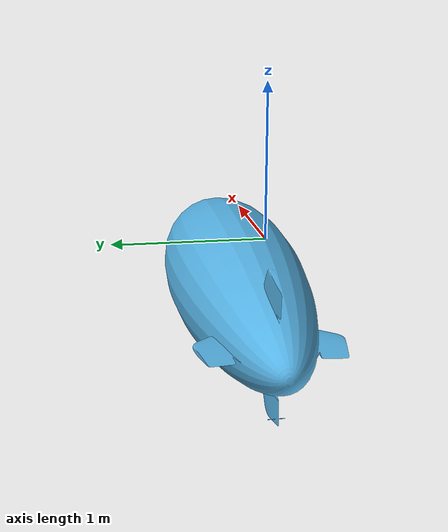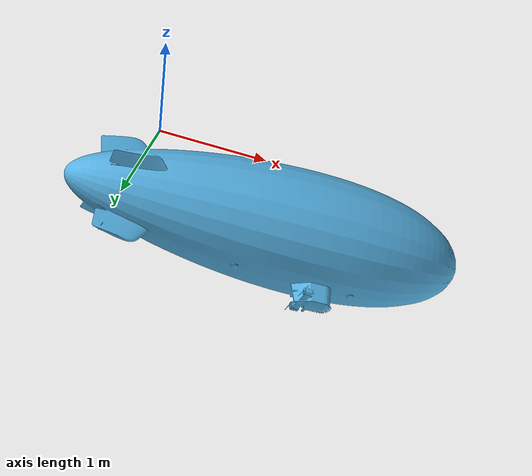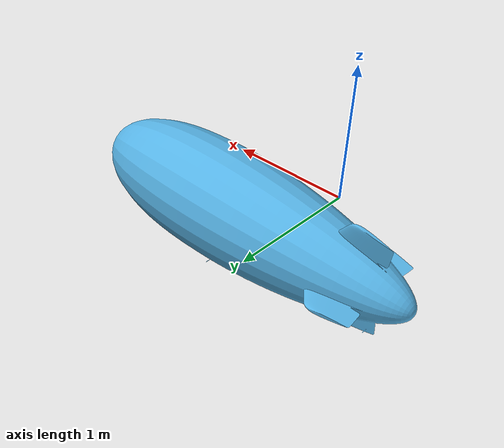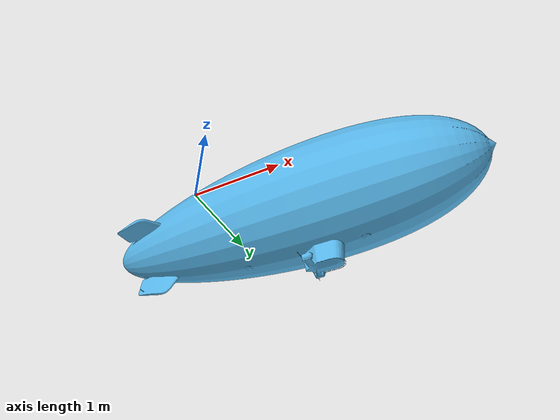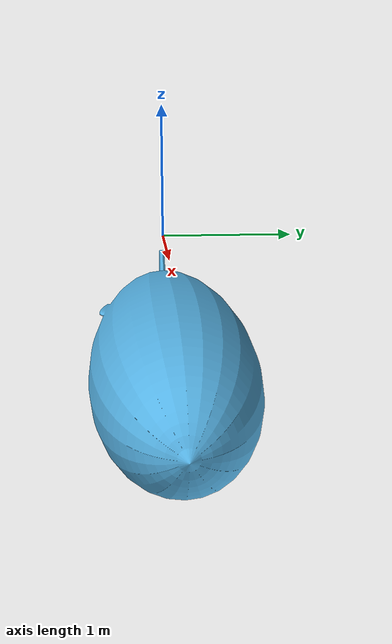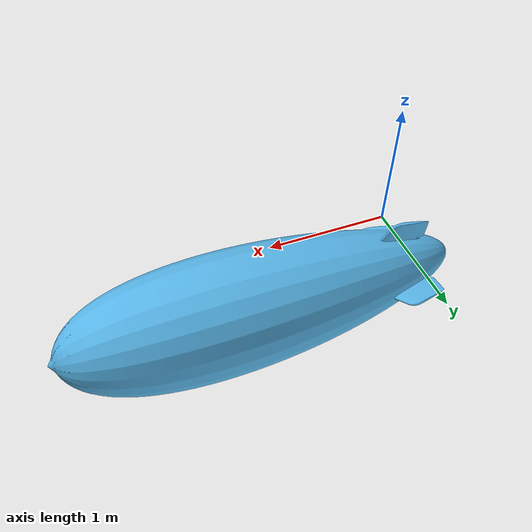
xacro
<?xml version="1.0"?>

<robot name="real_blimp" xmlns:xacro="http://ros.org/wiki/xacro">

  <xacro:property name="gondola_xyz" value="1.357 0.0 -1.43"/>
<xacro:property name="gondola_rpy" value="0.0 0.0 0.0"/>

<!-- Real blimp -->
<link name="base_link_real">
</link>
<link name="gondola_link_real">
  <visual>
    <geometry>
      <mesh filename="package://blimp_description/meshes/blimp.dae"/>
    </geometry>
  </visual>
  <collision>
    <geometry>
      <mesh filename="package://blimp_description/meshes/blimp_collision.dae"/>
    </geometry>
  </collision>
</link>
<joint name="base_to_gondola_joint_real" type="fixed">
    <parent link="base_link_real"/>
    <child link="gondola_link_real"/>
    <origin xyz="${gondola_xyz}" rpy="${gondola_rpy}" />
</joint>

</robot>
